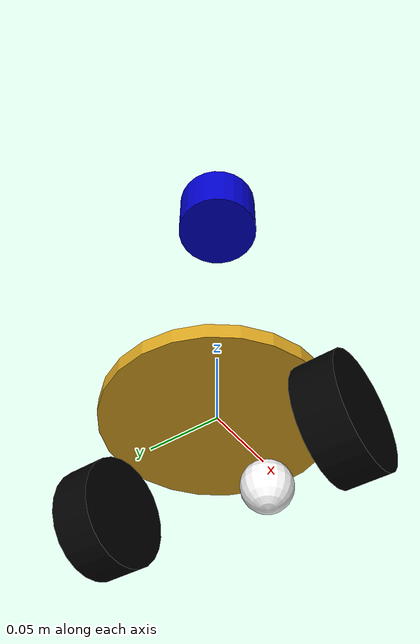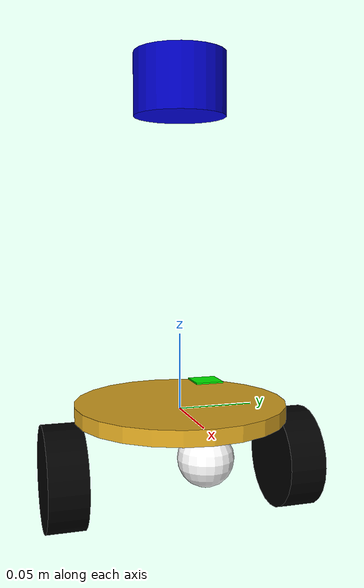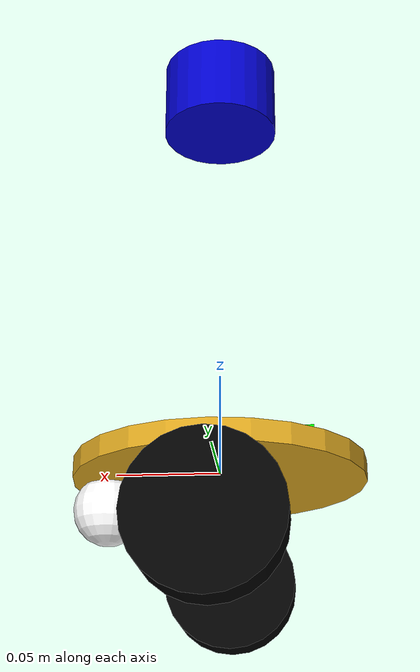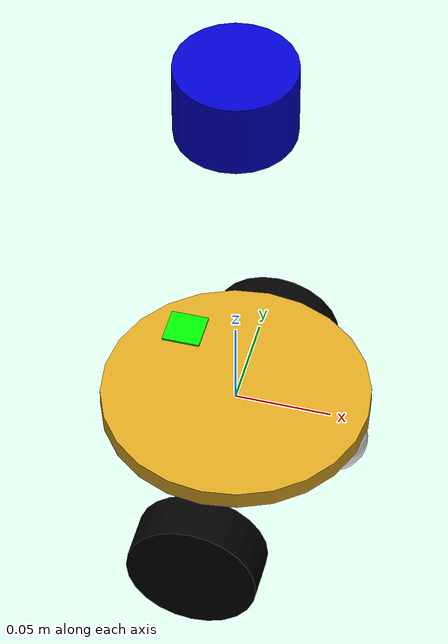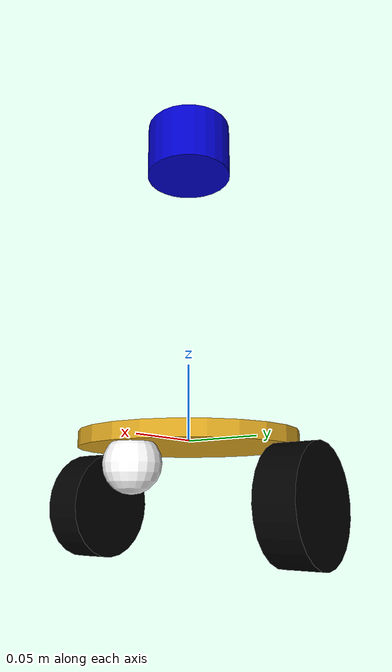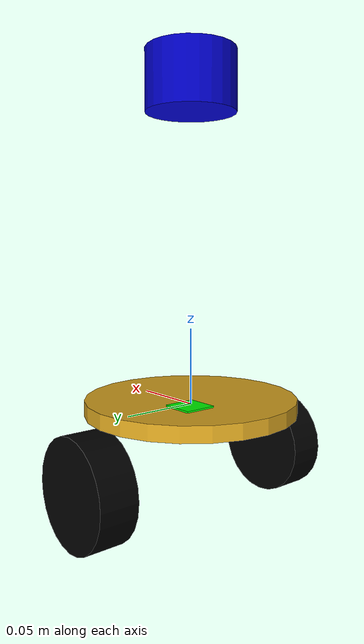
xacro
<?xml version="1.0"?>
<robot xmlns:xacro="http://www.ros.org/wiki/xacro" name="kbot">

  <xacro:include filename="$(find chefbot_description)/urdf/properties.xacro" />
  <xacro:include filename="$(find chefbot_description)/urdf/materials.xacro" />

  <xacro:include filename="$(find chefbot_description)/urdf/kbot_macros.xacro" />

  <!-- The physic engine does not accept a base_link with inertia. It is then useful to
       add a simple link without inertia and make a joint between it and the chassis
    -->

  <link name="base_link">
    <visual>
      <geometry>
        <cylinder radius="${base_radius}" length="${base_height}" />
      </geometry>
      <material name="gold" />
    </visual>
    <collision>
      <geometry>
        <cylinder radius="${base_radius}" length="${base_height}" />
      </geometry>
    </collision>
    <xacro:cylinder_inertia m="${base_mass}" r="${base_radius}" h="${base_height}" />
  </link>

  <link name="base_footprint"/>

  <joint name="base_link_joint" type="fixed">
    <origin xyz="0 0 ${-(2*wheel_radius+0.005)}" rpy="0 0 0" />
    <parent link="base_link" />
    <child link="base_footprint" />
  </joint>

  <xacro:wheel prefix="left"  y_reflect="1" />
  <xacro:wheel prefix="right" y_reflect="-1" />

  <xacro:caster prefix="front" x_reflect="1" />

  <link name="lidar_link">
    <visual>
      <origin xyz="0 0 0" rpy="0 0 0" />
      <geometry>
        <cylinder radius="${lidar_radius}" length="${lidar_height}" />
      </geometry>
      <material name="blue" />
    </visual>
  </link>
  <joint name="lidar_joint" type="fixed">
   <origin xyz="0 0 ${3.1*2*wheel_radius}" rpy="0 0 0" />
    <parent link="base_link" />
    <child link="lidar_link" />
  </joint>

  <link name="imu_link">
    <visual>
      <origin xyz="0 0 0" rpy="0 0 0" />
      <geometry>
        <box size="0.02 0.02 0.001" />
      </geometry>
      <material name="green" />
    </visual>
  </link>
  <joint name="imu_joint" type="fixed">
    <origin rpy="0 0 0" xyz="-0.035 0.03 0.01" />
    <parent link="base_link" />
    <child link="imu_link" />
  </joint>

</robot>

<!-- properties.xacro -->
<robot xmlns:xacro="http://ros.org/wiki/xacro">

  <xacro:property name="gazebo" value="false" />

  <xacro:property name="hokuyo_size" value="0.03" />

  <xacro:property name="cam_px" value="-0.087" />
  <xacro:property name="cam_py" value="-0.0125" />
  <xacro:property name="cam_pz" value="0.2870" />
  <xacro:property name="cam_or" value="0" />
  <xacro:property name="cam_op" value="0" />
  <xacro:property name="cam_oy" value="0" />
  <!-- PROPERTY LIST -->
  <!--All units in m-kg-s-radians unit system -->
  <xacro:property name="M_PI_2" value="${pi/2}" />
  <xacro:property name="DEG_TO_RAD" value="0.017453293" />
  <!-- Main body radius and height -->
  <!-- Main Body Cylinder base   -->
  <xacro:property name="base_width" value="0.16" />
  <xacro:property name="base_len" value="0.16" />

  <xacro:property name="base_height" value="0.01" />
  <xacro:property name="base_radius" value="0.07" />
  <xacro:property name="base_mass" value="4.0" /> <!-- in kg-->
  <xacro:property name="wheel_separation" value="${2*(wheel_radius+0.5*wheel_thick)" />

  <xacro:property name='lidar_mass' value='0.125' />
  <xacro:property name='lidar_radius' value='0.03' />
  <xacro:property name='lidar_height' value='0.04' />

  <!-- Wheels -->
  <xacro:property name="wheel_radius" value="0.034" />
  <xacro:property name="wheel_thick" value="0.025" />
  <xacro:property name="wheel_mass" value="0.5" /> <!-- in kg-->
  <xacro:property name="wheel_yGap" value="${base_radius*0.12}" />
  <xacro:property name="wheel_zoff" value="${wheel_radius+base_height/2}" />
  <xacro:property name="wheel_xoff" value="0" />

  <xacro:property name="caster_xoff" value='${(base_radius-caster_radius)}' />
  <xacro:property name="caster_radius" value="${wheel_radius*0.5}" />
  <xacro:property name="caster_mass" value="0.2" />

  <xacro:property name="cameraSize" value="0.04" />
  <xacro:property name="cameraMass" value="0.01" />

</robot>

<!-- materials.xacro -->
<robot xmlns:xacro="http://www.ros.org/wiki/xacro" >
    <material name="green">
        <color rgba="0.0 1.0 0.0 1.0" />
    </material>
    <material name="dark green">
        <color rgba="0 86 69 1.0" />
    </material>
    <material name="grey">
        <color rgba="0.2 0.2 0.2 1.0" />
    </material>
    <material name="orange">
        <color rgba="${255/255} ${108/255} ${10/255} 1.0" />
    </material>
    <material name="brown">
        <color rgba="${222/255} ${207/255} ${195/255} 1.0" />
    </material>
    <material name="red">
        <color rgba="0.8 0.0 0.0 1.0" />
    </material>
    <material name="black">
        <color rgba="0 0 0 1" />
    </material>
    <material name="white">
        <color rgba="1 1 1 1" />
    </material>
    <material name="blue">
        <color rgba="0 0 0.8 1" />
    </material>
    <material name="gold">
        <color rgba="${218/255} ${165/255} ${32/255} 1.0" />
    </material>
</robot>

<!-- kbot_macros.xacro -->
<robot xmlns:xacro="http://www.ros.org/wiki/xacro">
    <xacro:macro name="default_inertial" params="z_value i_value mass">
        <inertial>
            <origin xyz="0 0 ${z_value}" rpy="0 0 0" />
            <mass value="${mass}" />
            <inertia ixx="${i_value}" ixy="0.0" ixz="0.0" iyy="${i_value}" iyz="0.0" izz="${i_value}" />
        </inertial>
    </xacro:macro>
    <xacro:macro name="box_inertia" params="m w h d">
        <inertial>
            <mass value="${m}" />
            <inertia ixx="${m / 12.0 * (d*d + h*h)}" ixy="0.0" ixz="0.0" iyy="${m / 12.0 * (w*w + h*h)}" iyz="0.0" izz="${m / 12.0 * (w*w + d*d)}" />
        </inertial>
    </xacro:macro>
    <xacro:macro name="cylinder_inertia" params="m r h">
        <inertial>
            <mass value="${m}" />
            <inertia ixx="${m*(3*r*r+h*h)/12}" ixy="0" ixz="0" iyy="${m*(3*r*r+h*h)/12}" iyz="0" izz="${m*r*r/2}" />
        </inertial>
    </xacro:macro>
    <xacro:macro name="sphere_inertia" params="m r">
        <inertial>
            <mass value="${m}" />
            <inertia ixx="${2*m*(r*r)/5.0}" ixy="0.0" ixz="0.0" iyy="${2.0*m*(r*r)/5.0}" iyz="0.0" izz="${2.0*m*(r*r)/5.0}" />
        </inertial>
    </xacro:macro>
    <xacro:macro name="wheel" params="prefix y_reflect">
        <link name="${prefix}_wheel_link">
            <visual>
                <geometry>
                    <cylinder radius="${wheel_radius}" length="${wheel_thick}" />
                </geometry>
                <material name="black" />
            </visual>
            <collision>
                <geometry>
                    <cylinder radius="${wheel_radius}" length="${wheel_thick}" />
                </geometry>
            </collision>
            <xacro:cylinder_inertia m="${wheel_mass}" r="${wheel_radius}" h="${wheel_thick}" />
        </link>

        <joint name="${prefix}_wheel_joint" type="continuous">
            <!-- axis defines the rotation axis of the joint wrt the parent frame -->
            <axis xyz="0 0 1" />
            <parent link="base_link" />
            <child link="${prefix}_wheel_link" />
            <origin xyz="0 ${y_reflect*(base_radius+wheel_yGap)} ${-wheel_zoff}" rpy="${M_PI_2} 0 0" />
        </joint>
    </xacro:macro>
    <xacro:macro name="caster" params="prefix x_reflect">
        <link name="${prefix}_caster">
            <visual>
                <geometry>
                    <sphere radius="${caster_radius}" />
                </geometry>
                <material name="white" />
            </visual>
            <collision>
                <geometry>
                    <sphere radius="${caster_radius}" />
                </geometry>
            </collision>
            <xacro:sphere_inertia m="${caster_mass}" r="${caster_radius}" />
        </link>

        <joint name="${prefix}_caster_joint" type="fixed">
            <axis xyz="0 0 1" rpy="0 0 0" />
            <parent link="base_link" />
            <child link="${prefix}_caster" />
            <origin xyz="${x_reflect*caster_xoff} 0 -${caster_radius}" rpy="0 0 0" />
        </joint>
    </xacro:macro>
</robot>
